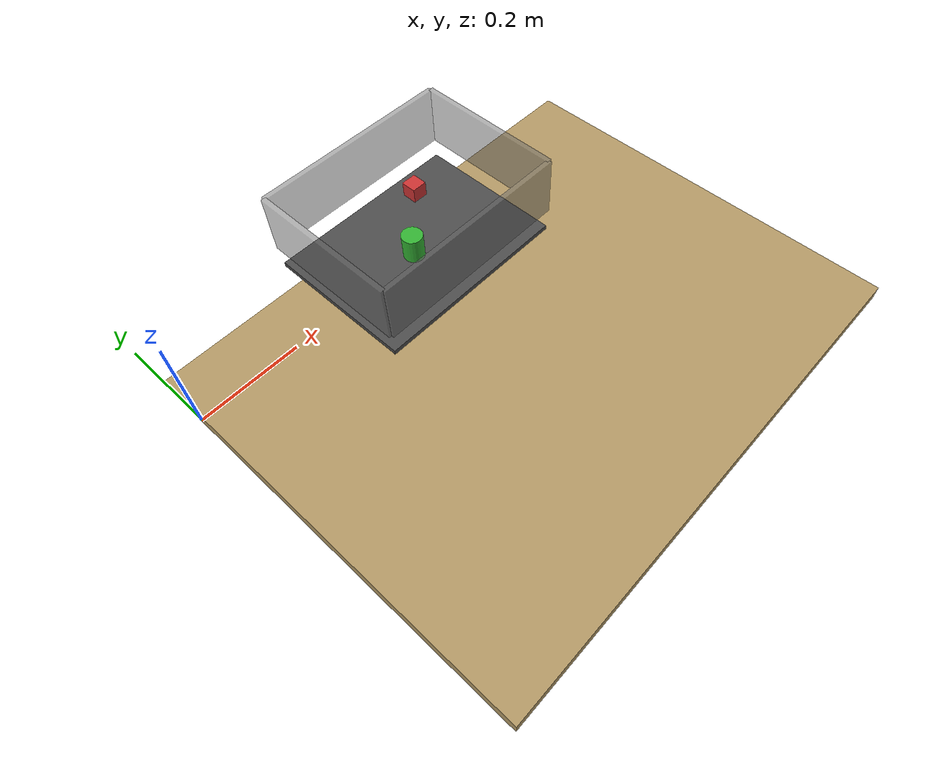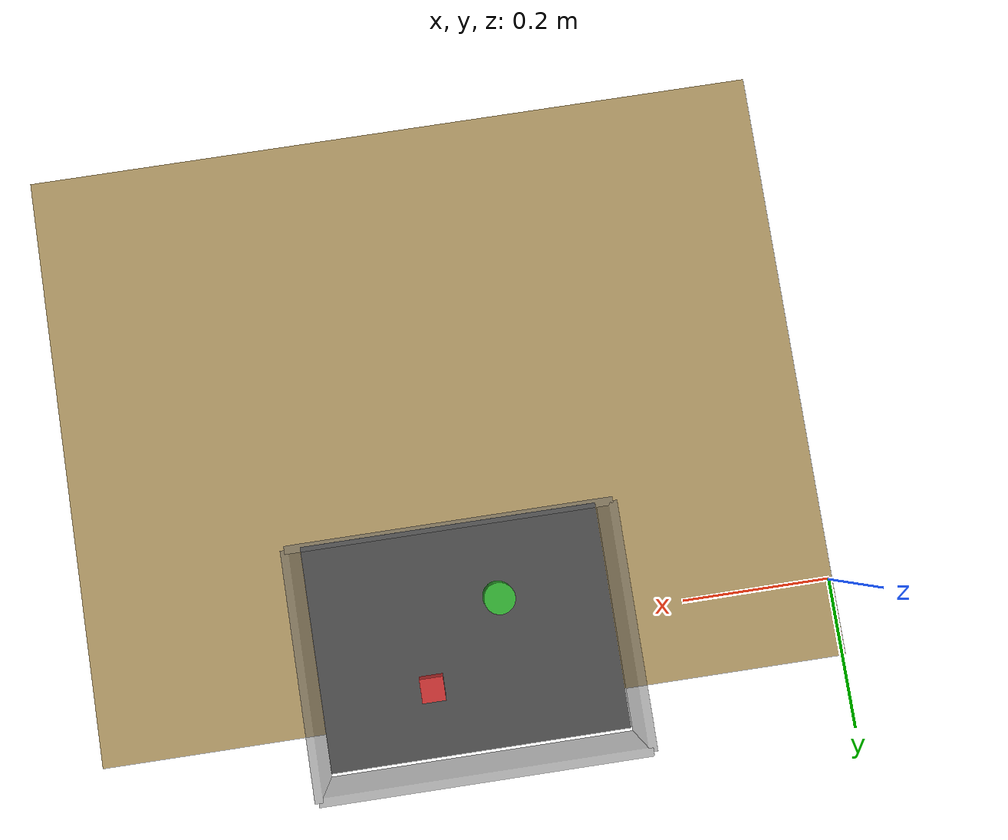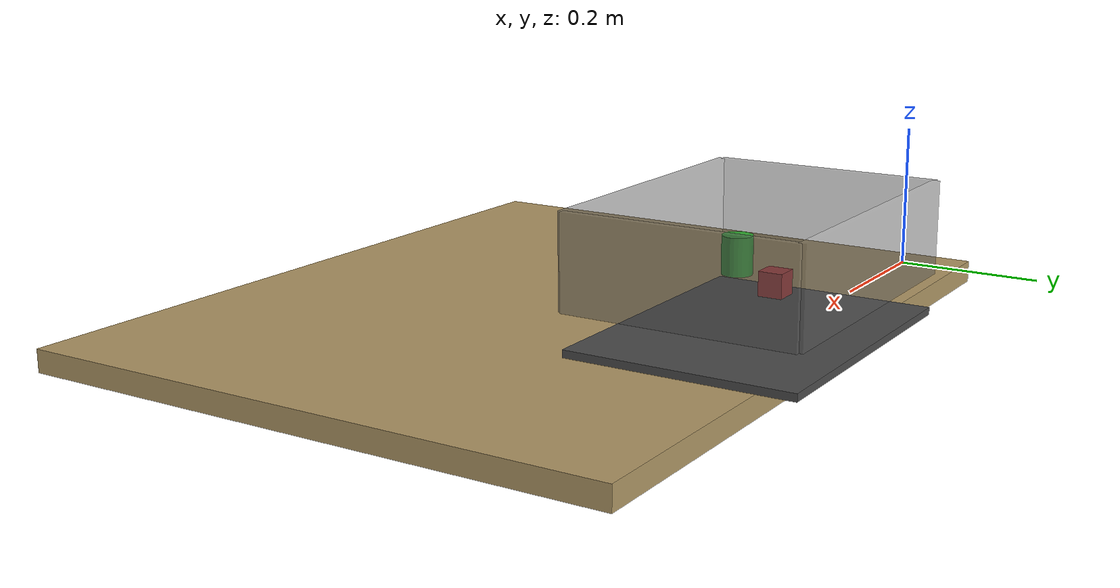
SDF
<?xml version="1.0"?>
<sdf version="1.7">
  <world name="bin_picking_world">
    <scene>
      <ambient>0.5 0.5 0.5 1.0</ambient>
      <background>0.3 0.3 0.3 1.0</background>
      <shadows>false</shadows>
    </scene>

    <!-- Table -->
    <model name="work_table">
      <static>true</static>
      <pose>0.5 -0.3 0 0 0 0</pose>
      <link name="table_link">
        <collision name="table_collision">
          <geometry><box><size>1.0 0.8 0.03</size></box></geometry>
        </collision>
        <visual name="table_visual">
          <geometry><box><size>1.0 0.8 0.03</size></box></geometry>
          <material>
            <ambient>0.5 0.4 0.3 1</ambient>
            <diffuse>0.7 0.6 0.4 1</diffuse>
          </material>
        </visual>
      </link>
    </model>

    <!-- Bin -->
    <model name="work_bin">
      <static>true</static>
      <pose>0.5 0 0.07 0 0 0</pose>
      <link name="bin_base">
        <pose>0 0 -0.05 0 0 0</pose>
        <collision name="base_collision">
          <geometry><box><size>0.4 0.3 0.01</size></box></geometry>
        </collision>
        <visual name="base_visual">
          <geometry><box><size>0.4 0.3 0.01</size></box></geometry>
          <material><ambient>0.3 0.3 0.3 1</ambient></material>
        </visual>
      </link>
      <!-- Front wall -->
      <link name="wall_f">
        <pose>0 0.15 0.06 0 0 0</pose>
        <collision name="wf_c"><geometry><box><size>0.4 0.01 0.12</size></box></geometry></collision>
        <visual name="wf_v"><geometry><box><size>0.4 0.01 0.12</size></box></geometry>
          <material><ambient>0.4 0.4 0.4 0.5</ambient></material></visual>
      </link>
      <!-- Back wall -->
      <link name="wall_b">
        <pose>0 -0.15 0.06 0 0 0</pose>
        <collision name="wb_c"><geometry><box><size>0.4 0.01 0.12</size></box></geometry></collision>
        <visual name="wb_v"><geometry><box><size>0.4 0.01 0.12</size></box></geometry>
          <material><ambient>0.4 0.4 0.4 0.5</ambient></material></visual>
      </link>
      <!-- Left wall -->
      <link name="wall_l">
        <pose>0.2 0 0.06 0 0 0</pose>
        <collision name="wl_c"><geometry><box><size>0.01 0.3 0.12</size></box></geometry></collision>
        <visual name="wl_v"><geometry><box><size>0.01 0.3 0.12</size></box></geometry>
          <material><ambient>0.4 0.4 0.4 0.5</ambient></material></visual>
      </link>
      <!-- Right wall -->
      <link name="wall_r">
        <pose>-0.2 0 0.06 0 0 0</pose>
        <collision name="wr_c"><geometry><box><size>0.01 0.3 0.12</size></box></geometry></collision>
        <visual name="wr_v"><geometry><box><size>0.01 0.3 0.12</size></box></geometry>
          <material><ambient>0.4 0.4 0.4 0.5</ambient></material></visual>
      </link>
    </model>

    <!-- Red cube -->
    <model name="object_cube">
      <pose>0.55 0.05 0.1 0 0 0</pose>
      <link name="cube_link">
        <collision name="cube_c">
          <geometry><box><size>0.03 0.03 0.03</size></box></geometry>
        </collision>
        <visual name="cube_v">
          <geometry><box><size>0.03 0.03 0.03</size></box></geometry>
          <material><ambient>0.8 0.2 0.2 1</ambient></material>
        </visual>
      </link>
    </model>

    <!-- Green cylinder -->
    <model name="object_cylinder">
      <pose>0.45 -0.05 0.1 0 0 0</pose>
      <link name="cyl_link">
        <collision name="cyl_c">
          <geometry><cylinder><radius>0.02</radius><length>0.05</length></cylinder></geometry>
        </collision>
        <visual name="cyl_v">
          <geometry><cylinder><radius>0.02</radius><length>0.05</length></cylinder></geometry>
          <material><ambient>0.2 0.7 0.2 1</ambient></material>
        </visual>
      </link>
    </model>

  </world>
</sdf>
